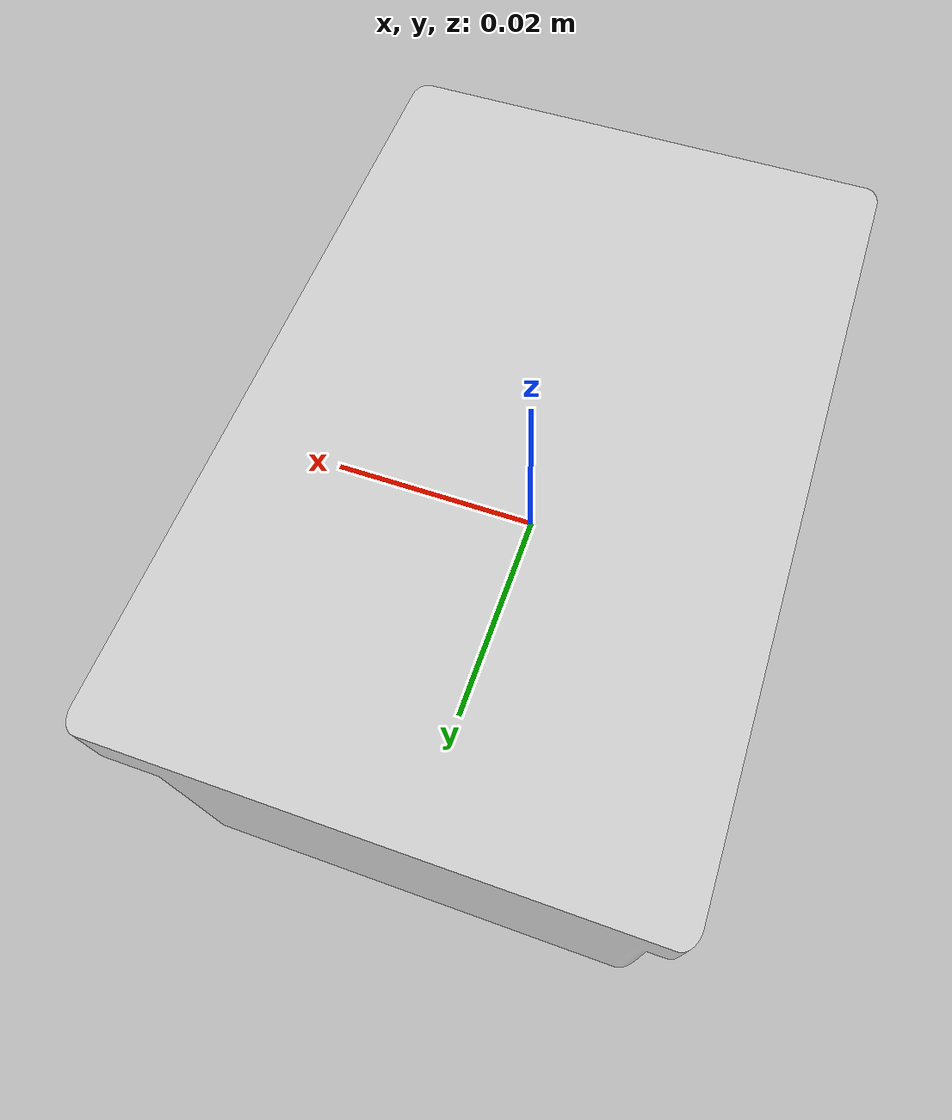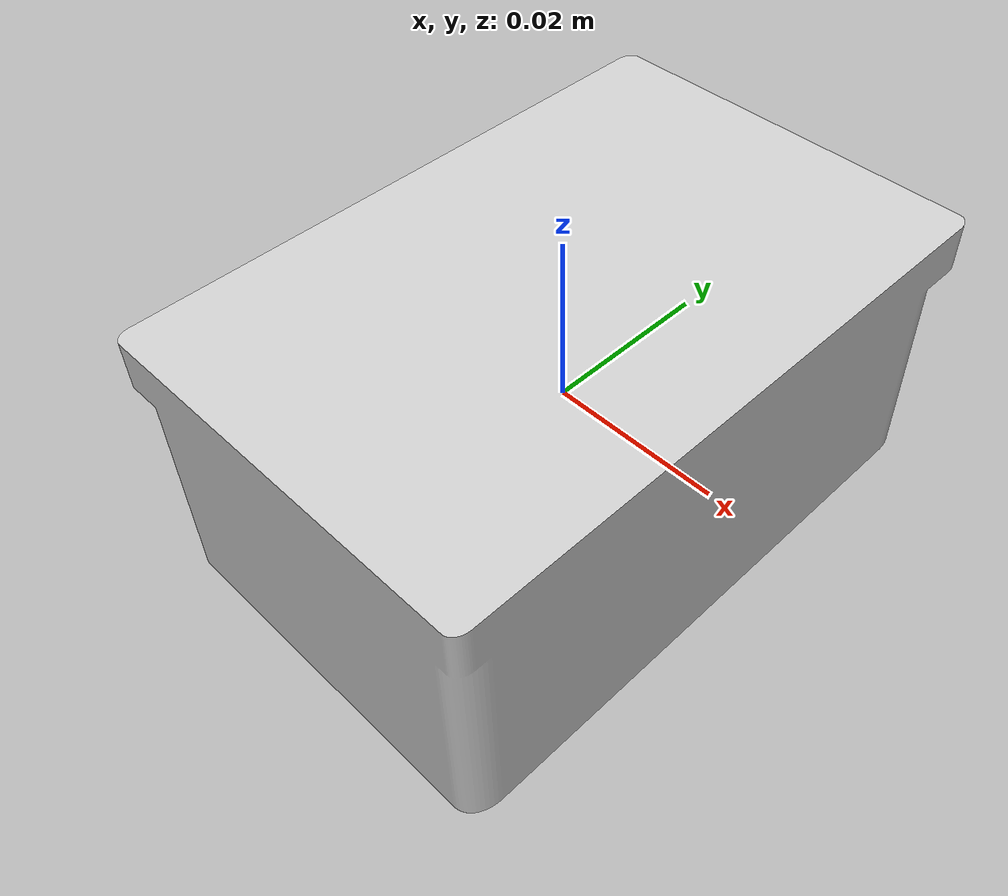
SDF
<?xml version="1.0" ?>
<sdf version="1.4">
  <model name="z_carrs">
    <link name="z_carrs_link">
      <inertial>
        <pose>0.00 0.0 0 0 0 0</pose>
        <mass>0.8</mass>
        <inertia>
          <ixx>0.001667</ixx>
	  <ixy>0.0</ixy>
	  <ixz>0.0</ixz>
	  <iyy>0.001667</iyy>
	  <iyz>0.0</iyz>
	  <izz>0.001667</izz>
	</inertia>
      </inertial>

      <visual name="z_carrs_visual">
        <pose>-0.022 -0.035 -0.015 0 0 0 </pose>
        <material>
	  <lighting>1</lighting>
	  <ambient>0.2 0.2 0.2 1</ambient>
	  <diffuse>0.8 0.8 0.8 1</diffuse>
	  <specular>0.2 0.2 0.2 1</specular>
	  <emissive>0.55 0.55 0.55 1</emissive>
          <script>
            <uri>model://z_carrs/materials/scripts</uri>
            <uri>model://z_carrs/materials/textures</uri>
            <name>Z_carrs/Image</name>
          </script>
        </material>
        <geometry>
          <mesh>
            <uri>model://z_carrs/meshes/z_carrs.dae</uri>
	    <scale>0.035 0.05 0.045</scale>
          </mesh>
        </geometry>
      </visual>

      <collision name="z_carrs_collision">
        <pose>0.0 0.0 0 0.0 0.0 0.0</pose>
        <geometry>
          <box>
            <size>0.045 0.070 0.035</size>
          </box>
        </geometry>
        <max_contacts>10</max_contacts>
        <surface>
          <contact>
	    <ode>
	      <max_vel>0.000</max_vel>
            </ode>
          </contact>
          <bounce/>
          <friction>
            <torsional>
              <ode/>
            </torsional>
            <ode>
              <mu>1</mu>
              <mu2>1</mu2>
            </ode>
          </friction>
        </surface>
      </collision>
      <self_collide>0</self_collide>
      <kinematic>0</kinematic>
    </link>
  </model>
</sdf>
